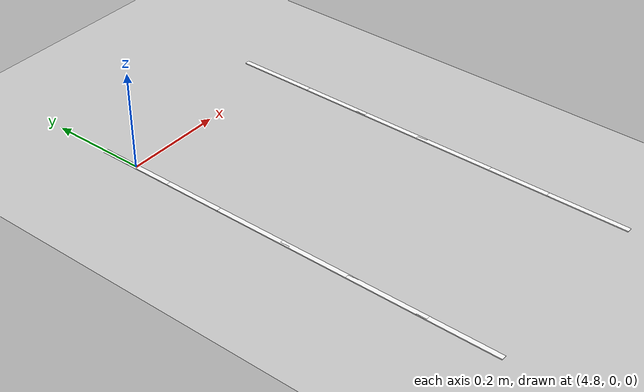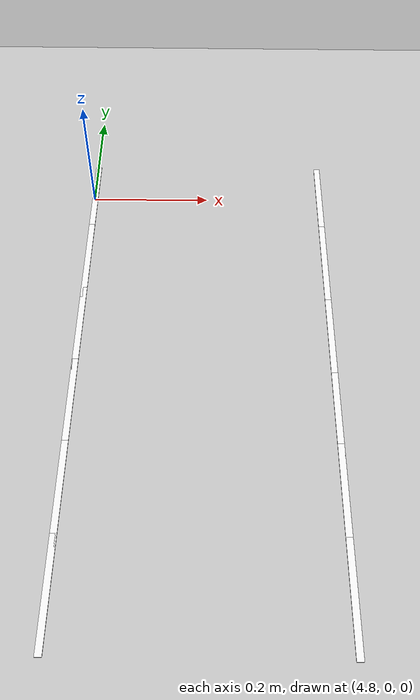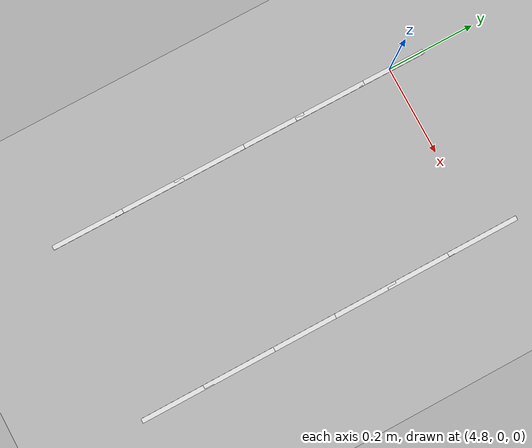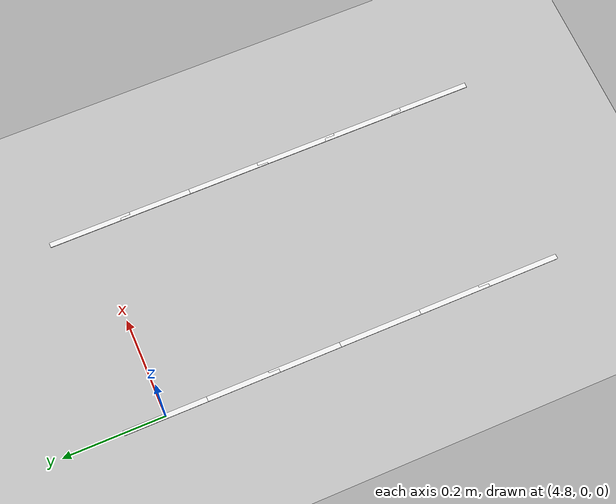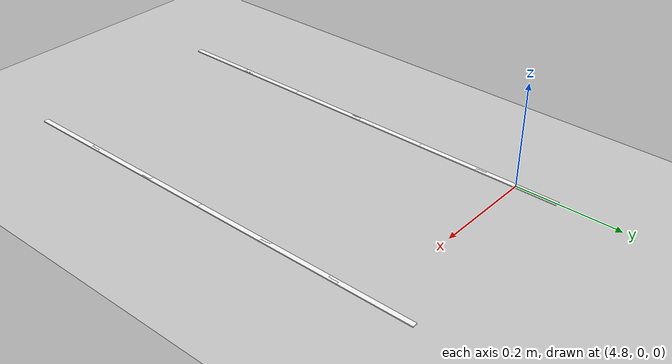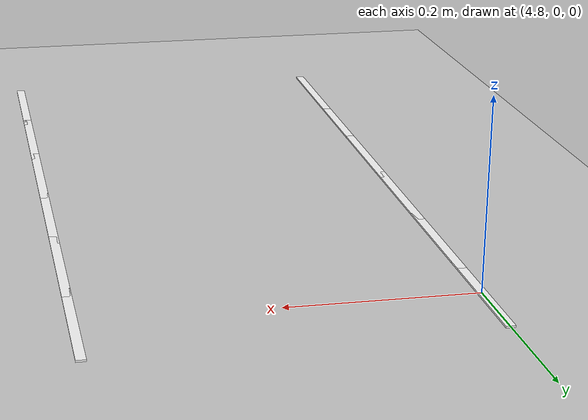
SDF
<sdf version="1.7">
 <world name="default">
  <model name="ground_plane">
   <static>1</static>
   <link name="link">
    <collision name="collision">
     <geometry><plane><normal>0 0 1</normal><size>100 100</size></plane></geometry>
     <surface>
      <contact><collide_bitmask>65535</collide_bitmask></contact>
      <friction><ode><mu>100</mu><mu2>50</mu2></ode></friction>
     </surface>
    </collision>
    <visual name="visual">
     <cast_shadows>0</cast_shadows>
     <geometry><plane><normal>0 0 1</normal><size>100 100</size></plane></geometry>
     <material>
      <script><uri>file://media/materials/scripts/gazebo.material</uri><name>Gazebo/Grey</name></script>
     </material>
    </visual>
   </link>
  </model>
  <model name="lane_line_left_119">
   <static>1</static>
   <link name="link">
    <pose>0 0 -0.004 0 -0 0</pose>
    <visual name="visual">
     <geometry><box><size>0.1629 0.01 0.01</size></box></geometry>
     <material><ambient>1 1 1 1</ambient><diffuse>1 1 1 1</diffuse></material>
    </visual>
    <collision name="collision"><geometry><box><size>0.1629 0.01 0.01</size></box></geometry></collision>
   </link>
   <pose>4.8 -0.714286 0 0 -0 1.5708</pose>
  </model>
  <model name="lane_line_right_119">
   <static>1</static>
   <link name="link">
    <pose>0 0 -0.004 0 -0 0</pose>
    <visual name="visual">
     <geometry><box><size>0.1629 0.01 0.01</size></box></geometry>
     <material><ambient>1 1 1 1</ambient><diffuse>1 1 1 1</diffuse></material>
    </visual>
    <collision name="collision"><geometry><box><size>0.1629 0.01 0.01</size></box></geometry></collision>
   </link>
   <pose>5.2 -0.714286 0 0 -0 1.5708</pose>
  </model>
  <model name="lane_line_left_120">
   <static>1</static>
   <link name="link">
    <pose>0 0 -0.004 0 -0 0</pose>
    <visual name="visual">
     <geometry><box><size>0.1629 0.01 0.01</size></box></geometry>
     <material><ambient>1 1 1 1</ambient><diffuse>1 1 1 1</diffuse></material>
    </visual>
    <collision name="collision"><geometry><box><size>0.1629 0.01 0.01</size></box></geometry></collision>
   </link>
   <pose>4.8 -0.571429 0 0 -0 1.5708</pose>
  </model>
  <model name="lane_line_right_120">
   <static>1</static>
   <link name="link">
    <pose>0 0 -0.004 0 -0 0</pose>
    <visual name="visual">
     <geometry><box><size>0.1629 0.01 0.01</size></box></geometry>
     <material><ambient>1 1 1 1</ambient><diffuse>1 1 1 1</diffuse></material>
    </visual>
    <collision name="collision"><geometry><box><size>0.1629 0.01 0.01</size></box></geometry></collision>
   </link>
   <pose>5.2 -0.571429 0 0 -0 1.5708</pose>
  </model>
  <model name="lane_line_left_121">
   <static>1</static>
   <link name="link">
    <pose>0 0 -0.004 0 -0 0</pose>
    <visual name="visual">
     <geometry><box><size>0.1629 0.01 0.01</size></box></geometry>
     <material><ambient>1 1 1 1</ambient><diffuse>1 1 1 1</diffuse></material>
    </visual>
    <collision name="collision"><geometry><box><size>0.1629 0.01 0.01</size></box></geometry></collision>
   </link>
   <pose>4.8 -0.428571 0 0 -0 1.5708</pose>
  </model>
  <model name="lane_line_right_121">
   <static>1</static>
   <link name="link">
    <pose>0 0 -0.004 0 -0 0</pose>
    <visual name="visual">
     <geometry><box><size>0.1629 0.01 0.01</size></box></geometry>
     <material><ambient>1 1 1 1</ambient><diffuse>1 1 1 1</diffuse></material>
    </visual>
    <collision name="collision"><geometry><box><size>0.1629 0.01 0.01</size></box></geometry></collision>
   </link>
   <pose>5.2 -0.428571 0 0 -0 1.5708</pose>
  </model>
  <model name="lane_line_left_122">
   <static>1</static>
   <link name="link">
    <pose>0 0 -0.004 0 -0 0</pose>
    <visual name="visual">
     <geometry><box><size>0.1629 0.01 0.01</size></box></geometry>
     <material><ambient>1 1 1 1</ambient><diffuse>1 1 1 1</diffuse></material>
    </visual>
    <collision name="collision"><geometry><box><size>0.1629 0.01 0.01</size></box></geometry></collision>
   </link>
   <pose>4.8 -0.285714 0 0 -0 1.5708</pose>
  </model>
  <model name="lane_line_right_122">
   <static>1</static>
   <link name="link">
    <pose>0 0 -0.004 0 -0 0</pose>
    <visual name="visual">
     <geometry><box><size>0.1629 0.01 0.01</size></box></geometry>
     <material><ambient>1 1 1 1</ambient><diffuse>1 1 1 1</diffuse></material>
    </visual>
    <collision name="collision"><geometry><box><size>0.1629 0.01 0.01</size></box></geometry></collision>
   </link>
   <pose>5.2 -0.285714 0 0 -0 1.5708</pose>
  </model>
  <model name="lane_line_left_123">
   <static>1</static>
   <link name="link">
    <pose>0 0 -0.004 0 -0 0</pose>
    <visual name="visual">
     <geometry><box><size>0.1629 0.01 0.01</size></box></geometry>
     <material><ambient>1 1 1 1</ambient><diffuse>1 1 1 1</diffuse></material>
    </visual>
    <collision name="collision"><geometry><box><size>0.1629 0.01 0.01</size></box></geometry></collision>
   </link>
   <pose>4.8 -0.142857 0 0 -0 1.5708</pose>
  </model>
  <model name="lane_line_right_123">
   <static>1</static>
   <link name="link">
    <pose>0 0 -0.004 0 -0 0</pose>
    <visual name="visual">
     <geometry><box><size>0.1629 0.01 0.01</size></box></geometry>
     <material><ambient>1 1 1 1</ambient><diffuse>1 1 1 1</diffuse></material>
    </visual>
    <collision name="collision"><geometry><box><size>0.1629 0.01 0.01</size></box></geometry></collision>
   </link>
   <pose>5.2 -0.142857 0 0 -0 1.5708</pose>
  </model>
  <model name="lane_line_left_124">
   <static>1</static>
   <link name="link">
    <pose>0 0 -0.004 0 -0 0</pose>
    <visual name="visual">
     <geometry><box><size>0.1629 0.01 0.01</size></box></geometry>
     <material><ambient>1 1 1 1</ambient><diffuse>1 1 1 1</diffuse></material>
    </visual>
    <collision name="collision"><geometry><box><size>0.1629 0.01 0.01</size></box></geometry></collision>
   </link>
   <pose>4.8 0 0 0 -0 1.5708</pose>
  </model>
  <model name="lane_line_right_124">
   <static>1</static>
   <link name="link">
    <pose>0 0 -0.004 0 -0 0</pose>
    <visual name="visual">
     <geometry><box><size>0.1629 0.01 0.01</size></box></geometry>
     <material><ambient>1 1 1 1</ambient><diffuse>1 1 1 1</diffuse></material>
    </visual>
    <collision name="collision"><geometry><box><size>0.1629 0.01 0.01</size></box></geometry></collision>
   </link>
   <pose>5.2 0 0 0 -0 1.5708</pose>
  </model>
 </world>
</sdf>
